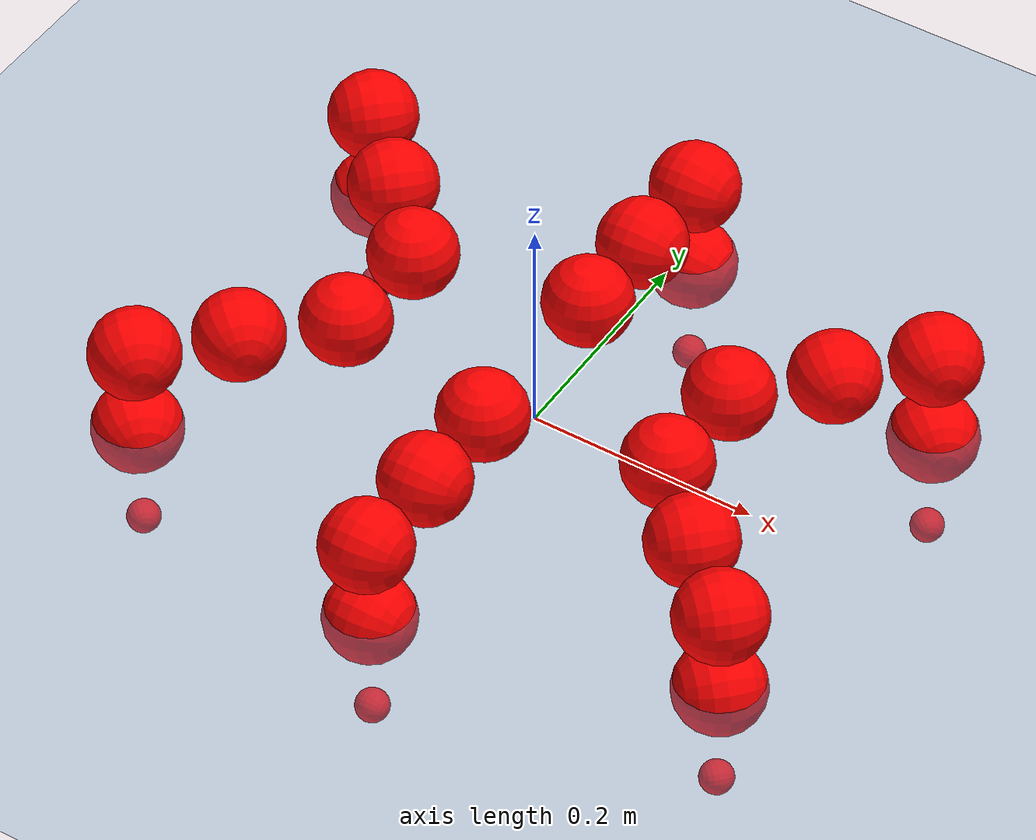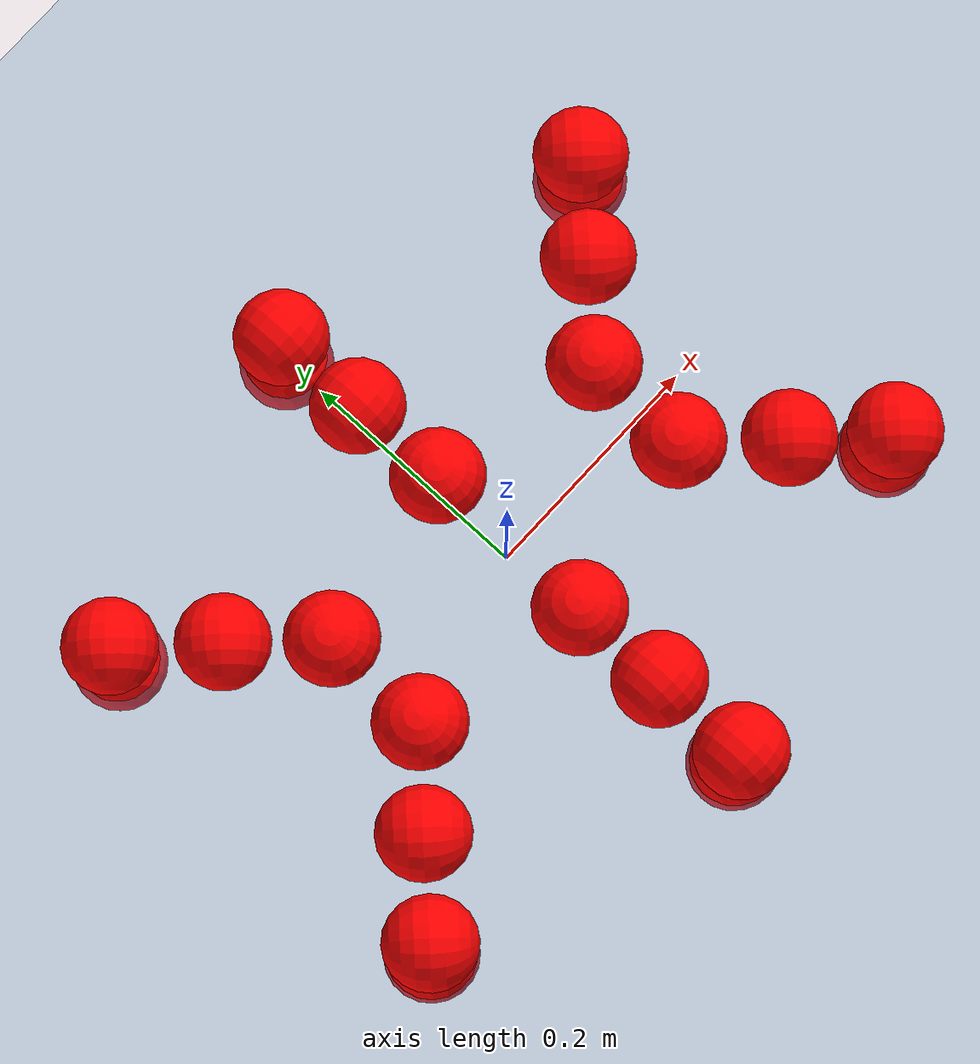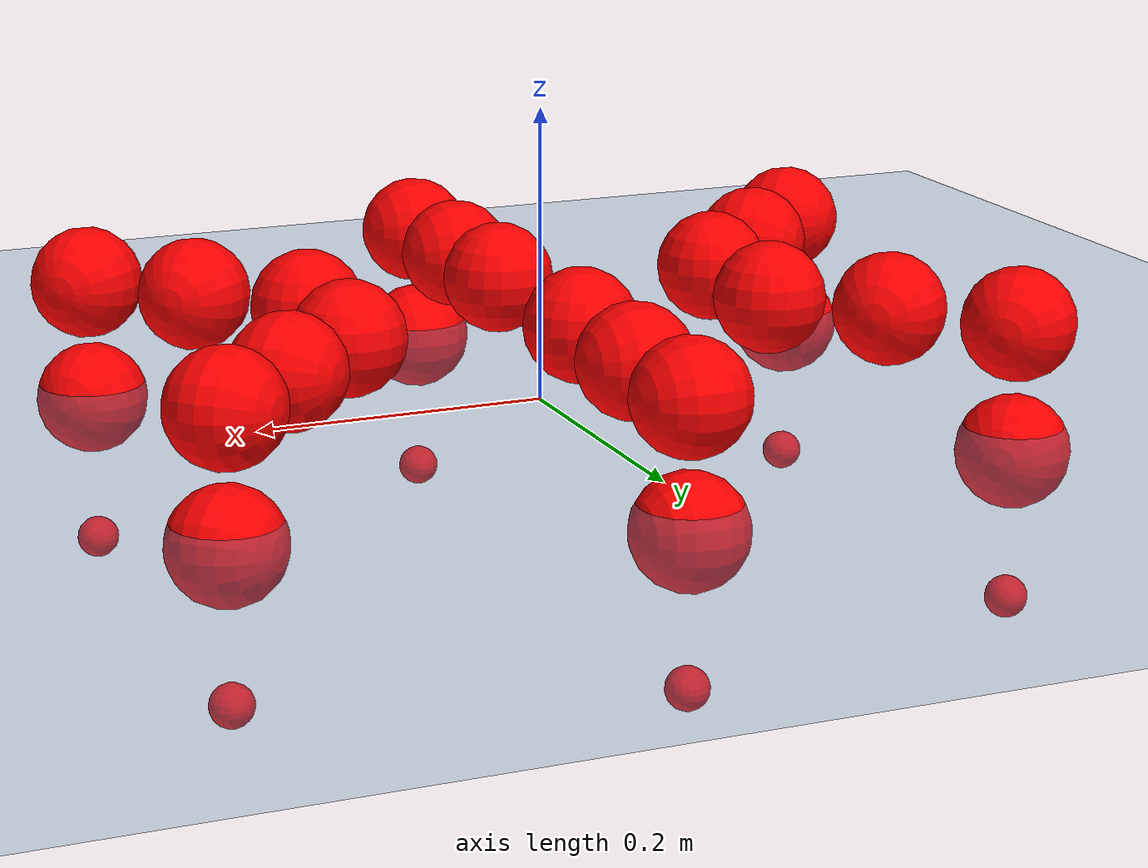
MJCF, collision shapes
<mujoco model="Golem">
  <compiler angle="radian" assetdir="assets" balanceinertia="true" inertiafromgeom="false"/>

  <option timestep="0.005" density="1.2" viscosity="2e-05"/>

  <size nkey="1"/>

  <visual>
    <quality shadowsize="8192"/>
    <map shadowclip="0.5"/>
  </visual>

  <default>
    <default class="/">
      <joint armature="0.01" damping="0.01" frictionloss="0.01"/>
      <geom contype="0" conaffinity="0" group="1" solref="-1000 -80"/>
      <site size="0.01 0.005 0.005" group="5"/>
      <general forcelimited="true" biastype="affine" gainprm="25" biasprm="0 -25 -0.5"/>
      <default class="visual">
        <geom type="mesh" group="2"/>
      </default>
      <default class="collision">
        <geom group="3"/>
      </default>
      <default class="foot">
        <geom size="0.01 0 0" condim="6" group="4" priority="1" solimp="0.015 1 0.01"/>
      </default>
      <default class="reward_collision_sphere">
        <geom group="5" rgba="1 0 0 1"/>
      </default>
    </default>
  </default>

  <asset>
    <texture type="skybox" colorspace="auto" name="//unnamed_texture_0" builtin="gradient" rgb1="0.95 0.95 0.95" rgb2="0.95 0.95 0.95" width="100" height="600"/>
    <texture type="2d" colorspace="auto" name="texplane" builtin="checker" rgb1="0.345 0.575 0.748" rgb2="0.345 0.575 0.748" markrgb="1 1 1" width="512" height="512"/>
    <material name="MatPlane" class="/" texture="texplane" texuniform="true" texrepeat="2 2" specular="0.9"/>
    <mesh name="body" class="/" file="body.stl" scale="0.001 0.001 0.001"/>
    <mesh name="coxa" class="/" file="coxa.stl" scale="0.001 0.001 0.001"/>
    <mesh name="femur" class="/" file="femur.stl" scale="0.001 0.001 0.001"/>
    <mesh name="tibia" class="/" file="tibia.stl" scale="0.001 0.001 0.001"/>
    <mesh name="tarsus" class="/" file="tarsus.stl" scale="0.001 0.001 0.001"/>
  </asset>

  <worldbody>
    <geom name="floor" class="/" size="100 100 0.125" type="plane" group="0" material="MatPlane"/>
    <light name="toplight_shadow" class="/" pos="0 0 5" dir="0.0990148 0.0990148 -0.990148" type="directional" ambient="0.04 0.04 0.04" diffuse="0.55 0.55 0.55" specular="0.12 0.12 0.12"/>
    <light name="toplight_fill" class="/" pos="0 0 5" dir="0.0990148 0.0990148 -0.990148" type="directional" castshadow="false" ambient="0.04 0.04 0.04" diffuse="0.3 0.3 0.3" specular="0.08 0.08 0.08"/>
    <body name="trunk" pos="0.000801894 0.000517404 -0.00225518" quat="1 -0.000122463 6.77849e-05 -9.29526e-05">
      <inertial pos="-9.38618e-05 -0.000166721 -0.00242876" quat="0.999995 -0.000272913 -0.000863288 -0.00314898" mass="3.28753" diaginertia="0.00748769 0.00306641 0.0184826"/>
      <joint name="//unnamed_joint_0" type="free"/>
      <geom name="//unnamed_geom_1" class="/" pos="0 0 0.0724566" quat="1 0 0 0" type="mesh" rgba="0.9 0.9 0.9 1" mesh="body"/>
      <site name="imu" class="/" pos="0.125978 -0.00267174 0.10901" size="0.00955895"/>
      <camera name="track" class="/" pos="0 -1.57443 0" quat="0.707107 0.707107 0 0" mode="trackcom"/>
      <camera name="ego_camera" class="/" pos="0.123283 0 0.113213" quat="-0.5 -0.5 0.5 0.5"/>
      <body name="coxa_RR" pos="-0.169731 -0.0663114 0.0720983" quat="0.382675 7.59373e-05 3.57319e-05 -0.923883">
        <inertial pos="0.000270574 -0.00213867 0.000959933" quat="0.999999 0.00101786 0.00133823 0.000118352" mass="0.169616" diaginertia="0.00739049 0.00299193 0.0177981"/>
        <joint name="coxa_joint_RR" class="/" pos="0 0 0" axis="0.00327317 -0.006691 -0.999972" range="-3.13609 3.13261" armature="0.00971683" damping="0.0144298" frictionloss="0.00974593"/>
        <geom name="//unnamed_geom_2" class="/" type="mesh" rgba="0.2 0.2 0.2 1" mesh="coxa"/>
        <geom name="//unnamed_geom_3" class="reward_collision_sphere" size="0.0382358" pos="-0.02845 0 0"/>
        <body name="femur_RR" pos="0.0579003 -0.000801833 0.000528848" quat="0.500088 -0.500067 0.499877 0.499968">
          <inertial pos="0.000686955 -0.000413884 0.000516845" quat="0.999999 0.000226381 -0.000907607 -0.000535916" mass="0.174167" diaginertia="0.00762757 0.00298989 0.0184916"/>
          <joint name="femur_joint_RR" class="/" pos="0 0 0" axis="0.00182685 0.000578444 -0.999998" range="-3.15373 3.10065" armature="0.00937577" damping="0" frictionloss="0.00982917"/>
          <geom name="//unnamed_geom_4" class="/" type="mesh" rgba="0.9 0.9 0.9 1" mesh="femur"/>
          <geom name="//unnamed_geom_5" class="reward_collision_sphere" size="0.0382358"/>
          <body name="tibia_RR" pos="0.0011465 -0.0842782 0.00171074" quat="0.000281981 1 0.000114879 -1.10068e-05">
            <inertial pos="-0.00144416 0.000142798 -0.000123369" quat="0.999991 0.00173577 -0.00143804 -0.00365198" mass="0.174346" diaginertia="0.00758583 0.00300734 0.0185526"/>
            <joint name="tibia_joint_RR" class="/" pos="0 0 0" axis="-0.00355462 0.00317576 0.999989" range="-3.18245 3.15894" armature="0.00922935" damping="0" frictionloss="0.00980925"/>
            <geom name="//unnamed_geom_6" class="/" type="mesh" rgba="0.2 0.2 0.2 1" mesh="tibia"/>
            <geom name="//unnamed_geom_7" class="reward_collision_sphere" size="0.0382358"/>
            <body name="tarsus_RR" pos="0.0817384 0.00145708 0.000466303" quat="1 -5.11391e-05 -0.000319719 -0.000240161">
              <inertial pos="0.0559626 0.00222063 -0.000634111" quat="0.504117 0.49976 0.499034 0.497063" mass="0.1739" diaginertia="0.00768968 0.00300087 0.0186321"/>
              <joint name="tarsus_joint_RR" class="/" pos="0 0 0" axis="0.000925645 0.000765029 0.999999" range="-3.13357 3.13525" armature="0.00995652" damping="0.00829565" frictionloss="0.0100654"/>
              <geom name="//unnamed_geom_8" class="/" type="mesh" rgba="0.9 0.9 0.9 1" mesh="tarsus"/>
              <geom name="foot_1" class="foot" size="0.00929316" pos="0.106213 0 0" quat="0 -0.707107 0 0.707107"/>
              <geom name="//unnamed_geom_10" class="reward_collision_sphere" size="0.0382358"/>
              <geom name="//unnamed_geom_11" class="reward_collision_sphere" size="0.0143384" pos="0.101946 0 0"/>
              <site name="foot_1" class="foot" pos="0.106213 0 0" quat="0 -0.707107 0 0.707107" size="0.00955895"/>
            </body>
          </body>
        </body>
      </body>
      <body name="coxa_RM" pos="-0.000398902 -0.105274 0.0704885" quat="0.70697 0.000647978 0.00100836 -0.707242">
        <inertial pos="-0.00146568 0.000250484 0.00121903" quat="0.999999 -0.00102887 0.000546363 -0.000690492" mass="0.172304" diaginertia="0.007457 0.00296801 0.0188631"/>
        <joint name="coxa_joint_RM" class="/" pos="0 0 0" axis="9.67326e-05 -0.000121352 -1" range="-3.18726 3.14054" armature="0.0101679" damping="0.0128492" frictionloss="0.00948104"/>
        <geom name="//unnamed_geom_12" class="/" type="mesh" rgba="0.2 0.2 0.2 1" mesh="coxa"/>
        <geom name="//unnamed_geom_13" class="reward_collision_sphere" size="0.0382358" pos="-0.02845 0 0"/>
        <body name="femur_RM" pos="0.054486 0.000395947 -0.000561539" quat="0.500048 -0.500442 0.500213 0.499297">
          <inertial pos="-0.000779859 0.000891668 -0.000927334" quat="0.999965 0.00641468 -0.00477176 -0.0025257" mass="0.177283" diaginertia="0.00778799 0.00302859 0.0187414"/>
          <joint name="femur_joint_RM" class="/" pos="0 0 0" axis="0.000725786 0.00186429 -0.999998" range="-3.13584 3.14026" armature="0.00971813" damping="0.0105118" frictionloss="0.0100372"/>
          <geom name="//unnamed_geom_14" class="/" type="mesh" rgba="0.9 0.9 0.9 1" mesh="femur"/>
          <geom name="//unnamed_geom_15" class="reward_collision_sphere" size="0.0382358"/>
          <body name="tibia_RM" pos="-9.71113e-05 -0.0837676 0.00125817" quat="2.50666e-06 1 -5.16848e-06 -1.4847e-06">
            <inertial pos="0.00128949 0.0016962 0.000205049" quat="0.999997 -0.00233749 -0.000857508 -0.000248412" mass="0.179867" diaginertia="0.00788504 0.00310245 0.0190282"/>
            <joint name="tibia_joint_RM" class="/" pos="0 0 0" axis="-0.000901152 -0.00131866 0.999999" range="-3.131 3.08914" armature="0.00929927" damping="0" frictionloss="0.00976618"/>
            <geom name="//unnamed_geom_16" class="/" type="mesh" rgba="0.2 0.2 0.2 1" mesh="tibia"/>
            <geom name="//unnamed_geom_17" class="reward_collision_sphere" size="0.0382358"/>
            <body name="tarsus_RM" pos="0.0810363 -0.00212738 1.71773e-07" quat="1 8.86611e-05 -7.12748e-05 0.000320616">
              <inertial pos="0.0559886 0.00272626 -0.000917463" quat="0.499904 0.500409 0.499879 0.499809" mass="0.16812" diaginertia="0.00762902 0.00298377 0.0186099"/>
              <joint name="tarsus_joint_RM" class="/" pos="0 0 0" axis="0.0021135 0.000368707 0.999998" range="-3.13534 3.14408" armature="0.00946095" damping="0.00465235" frictionloss="0.0095099"/>
              <geom name="//unnamed_geom_18" class="/" type="mesh" rgba="0.9 0.9 0.9 1" mesh="tarsus"/>
              <geom name="foot_2" class="foot" size="0.00925993" pos="0.106213 0 0" quat="0 -0.707107 0 0.707107"/>
              <geom name="//unnamed_geom_20" class="reward_collision_sphere" size="0.0382358"/>
              <geom name="//unnamed_geom_21" class="reward_collision_sphere" size="0.0143384" pos="0.101946 0 0"/>
              <site name="foot_2" class="foot" pos="0.106213 0 0" quat="0 -0.707107 0 0.707107" size="0.00955895"/>
            </body>
          </body>
        </body>
      </body>
      <body name="coxa_RF" pos="0.169337 -0.0647322 0.0718627" quat="0.923844 0.000119899 -0.000185469 -0.382769">
        <inertial pos="-0.00174031 -0.000728947 0.00156435" quat="0.999999 -0.000139873 0.000958027 0.00100157" mass="0.177907" diaginertia="0.00789284 0.00301997 0.0191019"/>
        <joint name="coxa_joint_RF" class="/" pos="0 0 0" axis="0.00421166 1.50784e-06 -0.999991" range="-3.13639 3.13774" armature="0.00897936" damping="0.00335831" frictionloss="0.00957877"/>
        <geom name="//unnamed_geom_22" class="/" type="mesh" rgba="0.2 0.2 0.2 1" mesh="coxa"/>
        <geom name="//unnamed_geom_23" class="reward_collision_sphere" size="0.0382358" pos="-0.02845 0 0"/>
        <body name="femur_RF" pos="0.0581417 -0.00156702 -0.000336366" quat="0.499753 -0.500393 0.499387 0.500467">
          <inertial pos="-0.000195744 0.000696172 0.000481098" quat="0.999998 -0.00103684 -0.00137995 -0.00049547" mass="0.166216" diaginertia="0.00763452 0.0029673 0.0180827"/>
          <joint name="femur_joint_RF" class="/" pos="0 0 0" axis="3.89209e-05 0.0019642 -0.999998" range="-3.15979 3.09635" armature="0.00846458" damping="0.00449056" frictionloss="0.00841853"/>
          <geom name="//unnamed_geom_24" class="/" type="mesh" rgba="0.9 0.9 0.9 1" mesh="femur"/>
          <geom name="//unnamed_geom_25" class="reward_collision_sphere" size="0.0382358"/>
          <body name="tibia_RF" pos="-0.000794724 -0.0828429 0.00195629" quat="9.86826e-05 1 -0.000151181 -8.91606e-05">
            <inertial pos="-0.00190647 0.000498895 -7.65048e-06" quat="0.999998 0.000226999 0.00213536 4.62881e-05" mass="0.175513" diaginertia="0.00755228 0.0030185 0.0185707"/>
            <joint name="tibia_joint_RF" class="/" pos="0 0 0" axis="-0.000205098 -0.000109068 1" range="-3.13868 3.14681" armature="0.00940584" damping="0" frictionloss="0.00946862"/>
            <geom name="//unnamed_geom_26" class="/" type="mesh" rgba="0.2 0.2 0.2 1" mesh="tibia"/>
            <geom name="//unnamed_geom_27" class="reward_collision_sphere" size="0.0382358"/>
            <body name="tarsus_RF" pos="0.0816883 -0.00170552 -0.00140691" quat="1 -0.000208713 0.000140492 -0.000110855">
              <inertial pos="0.0553094 0.000354422 -0.000290786" quat="0.507395 0.494557 0.493187 0.504708" mass="0.175079" diaginertia="0.00772527 0.0030672 0.0182091"/>
              <joint name="tarsus_joint_RF" class="/" pos="0 0 0" axis="-0.000466151 -0.000176988 1" stiffness="0.000597061" range="-3.12606 3.14263" armature="0.0084897" damping="0.00293669" frictionloss="0.00881003"/>
              <geom name="//unnamed_geom_28" class="/" type="mesh" rgba="0.9 0.9 0.9 1" mesh="tarsus"/>
              <geom name="foot_3" class="foot" size="0.00925131" pos="0.106213 0 0" quat="0 -0.707107 0 0.707107"/>
              <geom name="//unnamed_geom_30" class="reward_collision_sphere" size="0.0382358"/>
              <geom name="//unnamed_geom_31" class="reward_collision_sphere" size="0.0143384" pos="0.101946 0 0"/>
              <site name="foot_3" class="foot" pos="0.106213 0 0" quat="0 -0.707107 0 0.707107" size="0.00955895"/>
            </body>
          </body>
        </body>
      </body>
      <body name="coxa_LR" pos="-0.167985 0.0683434 0.0711709" quat="0.382659 -0.000147374 5.02699e-05 0.923889">
        <inertial pos="-0.000902872 -0.000127008 -9.32033e-05" quat="0.99994 0.00328827 0.00504965 -0.00913761" mass="0.176787" diaginertia="0.00764116 0.0030678 0.0185731"/>
        <joint name="coxa_joint_LR" class="/" pos="0 0 0" axis="0.000646929 -0.000696217 -1" range="-3.13502 3.12421" armature="0.0101086" damping="0.0132991" frictionloss="0.00906514"/>
        <geom name="//unnamed_geom_32" class="/" type="mesh" rgba="0.2 0.2 0.2 1" mesh="coxa"/>
        <geom name="//unnamed_geom_33" class="reward_collision_sphere" size="0.0382358" pos="-0.02845 0 0"/>
        <body name="femur_LR" pos="0.0557481 -0.000991138 0.000550663" quat="0.500113 -0.499853 0.500146 0.499888">
          <inertial pos="-0.00166249 -0.00221544 0.00189931" quat="1 -7.23665e-05 -7.96505e-05 -0.000185361" mass="0.178042" diaginertia="0.00757135 0.00307183 0.0187174"/>
          <joint name="femur_joint_LR" class="/" pos="0 0 0" axis="-0.00434723 -0.0111336 0.999929" range="-3.1514 3.12086" armature="0.0107391" damping="0.00140772" frictionloss="0.00885197"/>
          <geom name="//unnamed_geom_34" class="/" type="mesh" rgba="0.9 0.9 0.9 1" mesh="femur"/>
          <geom name="//unnamed_geom_35" class="reward_collision_sphere" size="0.0382358"/>
          <body name="tibia_LR" pos="0.00137414 -0.0877927 -0.000815311" quat="-4.95996e-05 1 4.49788e-05 0.000278694">
            <inertial pos="-0.000208347 -0.00196454 0.000122163" quat="0.999996 0.00109274 -0.000549606 -0.00241904" mass="0.171217" diaginertia="0.00761578 0.00298547 0.0179314"/>
            <joint name="tibia_joint_LR" class="/" pos="0 0 0" axis="0.00119664 -0.00810397 -0.999966" range="-3.13798 3.10238" armature="0.0094538" damping="0" frictionloss="0.00980547"/>
            <geom name="//unnamed_geom_36" class="/" type="mesh" rgba="0.2 0.2 0.2 1" mesh="tibia"/>
            <geom name="//unnamed_geom_37" class="reward_collision_sphere" size="0.0382358"/>
            <body name="tarsus_LR" pos="0.0867343 -0.000453931 0.000407182" quat="1 -2.83562e-05 -0.000155635 4.1181e-06">
              <inertial pos="0.0587309 -0.000426254 -0.000875164" quat="0.499281 0.501041 0.498915 0.500759" mass="0.174199" diaginertia="0.00766232 0.00301717 0.0184292"/>
              <joint name="tarsus_joint_LR" class="/" pos="0 0 0" axis="-0.00178319 -0.00267219 -0.999995" range="-3.16116 3.13178" armature="0.00889533" damping="0.0275463" frictionloss="0.00942271"/>
              <geom name="//unnamed_geom_38" class="/" type="mesh" rgba="0.9 0.9 0.9 1" mesh="tarsus"/>
              <geom name="foot_4" class="foot" size="0.00969156" pos="0.106213 0 0" quat="0.707107 0 -0.707107 0"/>
              <geom name="//unnamed_geom_40" class="reward_collision_sphere" size="0.0382358"/>
              <geom name="//unnamed_geom_41" class="reward_collision_sphere" size="0.0143384" pos="0.101946 0 0"/>
              <site name="foot_4" class="foot" pos="0.106213 0 0" quat="0.707107 0 -0.707107 0" size="0.00955895"/>
            </body>
          </body>
        </body>
      </body>
      <body name="coxa_LM" pos="0.00173926 0.103126 0.0729523" quat="0.707091 2.89711e-05 -3.37165e-05 0.707123">
        <inertial pos="0.000524961 -0.00111972 -0.000501531" quat="0.999997 0.000355605 0.000553043 0.0023755" mass="0.170305" diaginertia="0.00774818 0.00303389 0.0182674"/>
        <joint name="coxa_joint_LM" class="/" pos="0 0 0" axis="0.00691841 -0.00583631 -0.999959" range="-3.15575 3.1864" armature="0.0095607" damping="0.0101729" frictionloss="0.00971855"/>
        <geom name="//unnamed_geom_42" class="/" type="mesh" rgba="0.2 0.2 0.2 1" mesh="coxa"/>
        <geom name="//unnamed_geom_43" class="reward_collision_sphere" size="0.0382358" pos="-0.02845 0 0"/>
        <body name="femur_LM" pos="0.0557958 0.000877739 -0.00307345" quat="0.499793 -0.499464 0.500658 0.500084">
          <inertial pos="0.000817962 -0.000266985 -0.000545798" quat="1 -0.00085363 -7.44e-05 0.000443026" mass="0.181972" diaginertia="0.00783766 0.00306164 0.0191394"/>
          <joint name="femur_joint_LM" class="/" pos="0 0 0" axis="-0.00250854 -0.00114657 0.999996" stiffness="0.00822595" range="-3.1807 3.09965" armature="0.00910123" damping="0" frictionloss="0.00980378"/>
          <geom name="//unnamed_geom_44" class="/" type="mesh" rgba="0.9 0.9 0.9 1" mesh="femur"/>
          <geom name="//unnamed_geom_45" class="reward_collision_sphere" size="0.0382358"/>
          <body name="tibia_LM" pos="0.00150786 -0.081843 5.94269e-05" quat="-0.000319024 1 0.000328248 0.000288854">
            <inertial pos="0.000452376 -0.00148992 0.000147807" quat="0.999987 0.00155605 -0.00350522 0.00335181" mass="0.1724" diaginertia="0.00768859 0.00292948 0.0185517"/>
            <joint name="tibia_joint_LM" class="/" pos="0 0 0" axis="-0.00109137 -0.000415186 -0.999999" range="-3.1444 3.1413" armature="0.00869044" damping="0" frictionloss="0.00955618"/>
            <geom name="//unnamed_geom_46" class="/" type="mesh" rgba="0.2 0.2 0.2 1" mesh="tibia"/>
            <geom name="//unnamed_geom_47" class="reward_collision_sphere" size="0.0382358"/>
            <body name="tarsus_LM" pos="0.0851074 -0.000476316 -0.000641337" quat="1 -0.000338134 1.4342e-05 1.53849e-05">
              <inertial pos="0.0574901 0.0003682 0.00126596" quat="0.497519 0.500315 0.500496 0.501661" mass="0.176296" diaginertia="0.00744277 0.0030693 0.0186558"/>
              <joint name="tarsus_joint_LM" class="/" pos="0 0 0" axis="-0.000951421 -7.2568e-05 -1" range="-3.11738 3.14337" armature="0.00931406" damping="0" frictionloss="0.00954934"/>
              <geom name="//unnamed_geom_48" class="/" type="mesh" rgba="0.9 0.9 0.9 1" mesh="tarsus"/>
              <geom name="foot_5" class="foot" size="0.00876185" pos="0.106213 0 0" quat="0.707107 0 -0.707107 0"/>
              <geom name="//unnamed_geom_50" class="reward_collision_sphere" size="0.0382358"/>
              <geom name="//unnamed_geom_51" class="reward_collision_sphere" size="0.0143384" pos="0.101946 0 0"/>
              <site name="foot_5" class="foot" pos="0.106213 0 0" quat="0.707107 0 -0.707107 0" size="0.00955895"/>
            </body>
          </body>
        </body>
      </body>
      <body name="coxa_LF" pos="0.170884 0.0655749 0.0720198" quat="0.9242 0.000133514 0.000629231 0.381908">
        <inertial pos="0.000468587 2.83753e-05 0.00138335" quat="0.99999 -0.00107037 0.00355624 0.00250478" mass="0.176946" diaginertia="0.00777487 0.00296317 0.0187836"/>
        <joint name="coxa_joint_LF" class="/" pos="0 0 0" axis="-0.00055757 0.0100172 -0.99995" range="-3.14621 3.14581" armature="0.00972962" damping="0.00568583" frictionloss="0.00890647"/>
        <geom name="//unnamed_geom_52" class="/" type="mesh" rgba="0.2 0.2 0.2 1" mesh="coxa"/>
        <geom name="//unnamed_geom_53" class="reward_collision_sphere" size="0.0382358" pos="-0.02845 0 0"/>
        <body name="femur_LF" pos="0.0572475 0.000757883 -0.000102619" quat="0.500163 -0.4997 0.499918 0.500219">
          <inertial pos="-3.59627e-05 -3.6014e-05 0.00200608" quat="0.999997 -0.000683696 0.000704063 -0.00231438" mass="0.180497" diaginertia="0.00758241 0.00305963 0.0186789"/>
          <joint name="femur_joint_LF" class="/" pos="0 0 0" axis="0.00157517 -0.00554198 0.999983" range="-3.13303 3.13976" armature="0.0097279" damping="0.00518421" frictionloss="0.0103849"/>
          <geom name="//unnamed_geom_54" class="/" type="mesh" rgba="0.9 0.9 0.9 1" mesh="femur"/>
          <geom name="//unnamed_geom_55" class="reward_collision_sphere" size="0.0382358"/>
          <body name="tibia_LF" pos="0.00046606 -0.0832806 0.00206752" quat="-0.000561683 0.999999 -0.000473845 -0.000810808">
            <inertial pos="-0.000484996 0.00130624 -0.00178043" quat="0.999942 0.00456128 0.0048561 -0.00843455" mass="0.179082" diaginertia="0.00770881 0.003037 0.0186256"/>
            <joint name="tibia_joint_LF" class="/" pos="0 0 0" axis="-0.00171815 -0.00218262 -0.999996" range="-3.09051 3.12354" armature="0.00940734" damping="0.0124975" frictionloss="0.0095588"/>
            <geom name="//unnamed_geom_56" class="/" type="mesh" rgba="0.2 0.2 0.2 1" mesh="tibia"/>
            <geom name="//unnamed_geom_57" class="reward_collision_sphere" size="0.0382358"/>
            <body name="tarsus_LF" pos="0.085065 0.00189009 0.000718747" quat="1 6.17608e-05 0.000284694 -6.65942e-05">
              <inertial pos="0.0549725 0.00108675 -0.000381705" quat="0.49949 0.499805 0.500173 0.500531" mass="0.173419" diaginertia="0.00763979 0.00299632 0.0189042"/>
              <joint name="tarsus_joint_LF" class="/" pos="0 0 0" axis="-0.00984572 -0.000420877 -0.999951" range="-3.14004 3.11187" armature="0.0104759" damping="0.00651972" frictionloss="0.0107175"/>
              <geom name="//unnamed_geom_58" class="/" type="mesh" rgba="0.9 0.9 0.9 1" mesh="tarsus"/>
              <geom name="foot_6" class="foot" size="0.00914639" pos="0.106213 0 0" quat="0.707107 0 -0.707107 0"/>
              <geom name="//unnamed_geom_60" class="reward_collision_sphere" size="0.0382358"/>
              <geom name="//unnamed_geom_61" class="reward_collision_sphere" size="0.0143384" pos="0.101946 0 0"/>
              <site name="foot_6" class="foot" pos="0.106213 0 0" quat="0.707107 0 -0.707107 0" size="0.00955895"/>
            </body>
          </body>
        </body>
      </body>
    </body>
  </worldbody>

  <contact>
    <pair class="/" geom1="floor" geom2="foot_1" name="//unnamed_contact_0"/>
    <pair class="/" geom1="floor" geom2="foot_2" name="//unnamed_contact_1"/>
    <pair class="/" geom1="floor" geom2="foot_3" name="//unnamed_contact_2"/>
    <pair class="/" geom1="floor" geom2="foot_4" name="//unnamed_contact_3"/>
    <pair class="/" geom1="floor" geom2="foot_5" name="//unnamed_contact_4"/>
    <pair class="/" geom1="floor" geom2="foot_6" name="//unnamed_contact_5"/>
  </contact>

  <actuator>
    <general name="coxa_joint_RR" class="/" joint="coxa_joint_RR" forcerange="-7.00059 7.00059" gainprm="23.211" biasprm="0 -23.211 -0.49742"/>
    <general name="femur_joint_RR" class="/" joint="femur_joint_RR" forcerange="-7.19138 7.19138" gainprm="23.211" biasprm="0 -23.211 -0.49742"/>
    <general name="tibia_joint_RR" class="/" joint="tibia_joint_RR" forcerange="-6.71672 6.71672" gainprm="23.211" biasprm="0 -23.211 -0.49742"/>
    <general name="tarsus_joint_RR" class="/" joint="tarsus_joint_RR" forcerange="-6.62493 6.62493" gainprm="23.211" biasprm="0 -23.211 -0.49742"/>
    <general name="coxa_joint_RM" class="/" joint="coxa_joint_RM" forcerange="-6.44801 6.44801" gainprm="23.211" biasprm="0 -23.211 -0.49742"/>
    <general name="femur_joint_RM" class="/" joint="femur_joint_RM" forcerange="-6.92877 6.92877" gainprm="23.211" biasprm="0 -23.211 -0.49742"/>
    <general name="tibia_joint_RM" class="/" joint="tibia_joint_RM" forcerange="-7.06636 7.06636" gainprm="23.211" biasprm="0 -23.211 -0.49742"/>
    <general name="tarsus_joint_RM" class="/" joint="tarsus_joint_RM" forcerange="-6.88019 6.88019" gainprm="23.211" biasprm="0 -23.211 -0.49742"/>
    <general name="coxa_joint_RF" class="/" joint="coxa_joint_RF" forcerange="-7.11628 7.11628" gainprm="23.211" biasprm="0 -23.211 -0.49742"/>
    <general name="femur_joint_RF" class="/" joint="femur_joint_RF" forcerange="-7.62202 7.62202" gainprm="23.211" biasprm="0 -23.211 -0.49742"/>
    <general name="tibia_joint_RF" class="/" joint="tibia_joint_RF" forcerange="-7.5324 7.5324" gainprm="23.211" biasprm="0 -23.211 -0.49742"/>
    <general name="tarsus_joint_RF" class="/" joint="tarsus_joint_RF" forcerange="-7.46607 7.46607" gainprm="23.211" biasprm="0 -23.211 -0.49742"/>
    <general name="coxa_joint_LR" class="/" joint="coxa_joint_LR" forcerange="-7.00656 7.00656" gainprm="23.211" biasprm="0 -23.211 -0.49742"/>
    <general name="femur_joint_LR" class="/" joint="femur_joint_LR" forcerange="-6.89808 6.89808" gainprm="23.211" biasprm="0 -23.211 -0.49742"/>
    <general name="tibia_joint_LR" class="/" joint="tibia_joint_LR" forcerange="-7.60751 7.60751" gainprm="23.211" biasprm="0 -23.211 -0.49742"/>
    <general name="tarsus_joint_LR" class="/" joint="tarsus_joint_LR" forcerange="-7.53023 7.53023" gainprm="23.211" biasprm="0 -23.211 -0.49742"/>
    <general name="coxa_joint_LM" class="/" joint="coxa_joint_LM" forcerange="-7.08822 7.08822" gainprm="23.211" biasprm="0 -23.211 -0.49742"/>
    <general name="femur_joint_LM" class="/" joint="femur_joint_LM" forcerange="-6.86029 6.86029" gainprm="23.211" biasprm="0 -23.211 -0.49742"/>
    <general name="tibia_joint_LM" class="/" joint="tibia_joint_LM" forcerange="-6.98784 6.98784" gainprm="23.211" biasprm="0 -23.211 -0.49742"/>
    <general name="tarsus_joint_LM" class="/" joint="tarsus_joint_LM" forcerange="-7.23713 7.23713" gainprm="23.211" biasprm="0 -23.211 -0.49742"/>
    <general name="coxa_joint_LF" class="/" joint="coxa_joint_LF" forcerange="-6.92469 6.92469" gainprm="23.211" biasprm="0 -23.211 -0.49742"/>
    <general name="femur_joint_LF" class="/" joint="femur_joint_LF" forcerange="-7.43797 7.43797" gainprm="23.211" biasprm="0 -23.211 -0.49742"/>
    <general name="tibia_joint_LF" class="/" joint="tibia_joint_LF" forcerange="-7.35956 7.35956" gainprm="23.211" biasprm="0 -23.211 -0.49742"/>
    <general name="tarsus_joint_LF" class="/" joint="tarsus_joint_LF" forcerange="-7.10836 7.10836" gainprm="23.211" biasprm="0 -23.211 -0.49742"/>
  </actuator>

  <sensor>
    <gyro site="imu" name="imu_angular_velocity"/>
    <velocimeter site="imu" name="imu_linear_velocity"/>
    <framelinvel objtype="site" objname="foot_1" name="foot_1_global_linear_velocity"/>
    <framelinvel objtype="site" objname="foot_2" name="foot_2_global_linear_velocity"/>
    <framelinvel objtype="site" objname="foot_3" name="foot_3_global_linear_velocity"/>
    <framelinvel objtype="site" objname="foot_4" name="foot_4_global_linear_velocity"/>
    <framelinvel objtype="site" objname="foot_5" name="foot_5_global_linear_velocity"/>
    <framelinvel objtype="site" objname="foot_6" name="foot_6_global_linear_velocity"/>
  </sensor>

  <keyframe>
    <key name="home" qpos="0 0 0.1457 1 0 0 0 0 0 0 0 0 0 0 0 0 0 0 0 0 0 0 0 0 0 0 0 0 0 0 0"/>
  </keyframe>
</mujoco>
